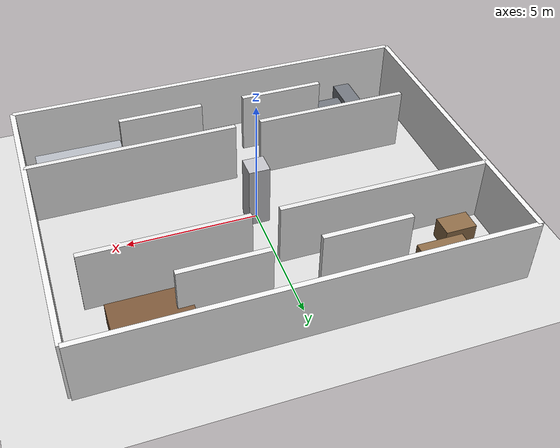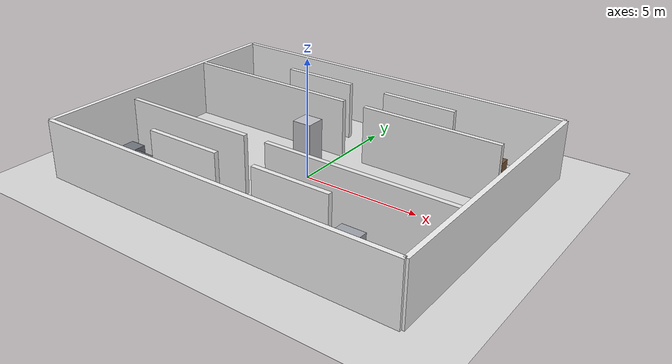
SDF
<?xml version="1.0"?>
<sdf version="1.9">
  <world name="husarion_office">
    <physics name="1ms" type="ignored">
      <max_step_size>0.001</max_step_size>
      <real_time_factor>1.0</real_time_factor>
    </physics>

    <plugin filename="ignition-gazebo-contact-system" name="gz::sim::systems::Contact"/>
    <plugin filename="ignition-gazebo-imu-system" name="gz::sim::systems::Imu"/>
    <plugin filename="ignition-gazebo-physics-system" name="gz::sim::systems::Physics"/>
    <plugin filename="ignition-gazebo-scene-broadcaster-system" name="gz::sim::systems::SceneBroadcaster"/>
    <plugin filename="ignition-gazebo-sensors-system" name="gz::sim::systems::Sensors"/>
    <plugin filename="ignition-gazebo-user-commands-system" name="gz::sim::systems::UserCommands"/>

    <scene>
      <ambient>0.8 0.8 0.8 1</ambient>
      <background>0.95 0.95 0.97 1</background>
      <grid>0</grid>
      <shadows>1</shadows>
    </scene>

    <light name="sun" type="directional">
      <cast_shadows>true</cast_shadows>
      <pose>0 0 15 0 0 0</pose>
      <diffuse>0.9 0.9 0.9 1</diffuse>
      <specular>0.2 0.2 0.2 1</specular>
      <attenuation>
        <range>100</range>
        <constant>0.9</constant>
        <linear>0.01</linear>
        <quadratic>0.001</quadratic>
      </attenuation>
      <direction>-0.4 0.2 -0.9</direction>
    </light>

    <model name="ground_plane">
      <static>true</static>
      <link name="link">
        <collision name="collision">
          <geometry>
            <plane>
              <normal>0 0 1</normal>
              <size>30 30</size>
            </plane>
          </geometry>
        </collision>
        <visual name="visual">
          <geometry>
            <plane>
              <normal>0 0 1</normal>
              <size>30 30</size>
            </plane>
          </geometry>
          <material>
            <ambient>0.85 0.85 0.85 1</ambient>
            <diffuse>0.85 0.85 0.85 1</diffuse>
          </material>
        </visual>
      </link>
    </model>

    <model name="office_shell">
      <static>true</static>
      <link name="walls">
        <collision name="outer_north"><pose>0 6 1.25 0 0 0</pose><geometry><box><size>16 0.2 2.5</size></box></geometry></collision>
        <collision name="outer_south"><pose>0 -6 1.25 0 0 0</pose><geometry><box><size>16 0.2 2.5</size></box></geometry></collision>
        <collision name="outer_west"><pose>-8 0 1.25 0 0 0</pose><geometry><box><size>0.2 12 2.5</size></box></geometry></collision>
        <collision name="outer_east"><pose>8 0 1.25 0 0 0</pose><geometry><box><size>0.2 12 2.5</size></box></geometry></collision>

        <collision name="corridor_top_left"><pose>-4 2.5 1.25 0 0 0</pose><geometry><box><size>8 0.2 2.5</size></box></geometry></collision>
        <collision name="corridor_top_right"><pose>4 2.5 1.25 0 0 0</pose><geometry><box><size>6 0.2 2.5</size></box></geometry></collision>
        <collision name="corridor_bottom_left"><pose>-4 -2.5 1.25 0 0 0</pose><geometry><box><size>6 0.2 2.5</size></box></geometry></collision>
        <collision name="corridor_bottom_right"><pose>4 -2.5 1.25 0 0 0</pose><geometry><box><size>8 0.2 2.5</size></box></geometry></collision>

        <collision name="left_divider_top"><pose>-2.5 4.25 1.25 0 0 1.5708</pose><geometry><box><size>0.2 3.3 2.5</size></box></geometry></collision>
        <collision name="left_divider_bottom"><pose>-2.5 -4.25 1.25 0 0 1.5708</pose><geometry><box><size>0.2 3.3 2.5</size></box></geometry></collision>
        <collision name="right_divider_top"><pose>2.5 4.25 1.25 0 0 1.5708</pose><geometry><box><size>0.2 3.3 2.5</size></box></geometry></collision>
        <collision name="right_divider_bottom"><pose>2.5 -4.25 1.25 0 0 1.5708</pose><geometry><box><size>0.2 3.3 2.5</size></box></geometry></collision>
        <collision name="center_pillar"><pose>0 0 1.25 0 0 0</pose><geometry><box><size>0.8 0.8 2.5</size></box></geometry></collision>

        <visual name="outer_north_v"><pose>0 6 1.25 0 0 0</pose><geometry><box><size>16 0.2 2.5</size></box></geometry><material><ambient>0.94 0.94 0.94 1</ambient><diffuse>0.94 0.94 0.94 1</diffuse></material></visual>
        <visual name="outer_south_v"><pose>0 -6 1.25 0 0 0</pose><geometry><box><size>16 0.2 2.5</size></box></geometry><material><ambient>0.94 0.94 0.94 1</ambient><diffuse>0.94 0.94 0.94 1</diffuse></material></visual>
        <visual name="outer_west_v"><pose>-8 0 1.25 0 0 0</pose><geometry><box><size>0.2 12 2.5</size></box></geometry><material><ambient>0.94 0.94 0.94 1</ambient><diffuse>0.94 0.94 0.94 1</diffuse></material></visual>
        <visual name="outer_east_v"><pose>8 0 1.25 0 0 0</pose><geometry><box><size>0.2 12 2.5</size></box></geometry><material><ambient>0.94 0.94 0.94 1</ambient><diffuse>0.94 0.94 0.94 1</diffuse></material></visual>
        <visual name="corridor_top_left_v"><pose>-4 2.5 1.25 0 0 0</pose><geometry><box><size>8 0.2 2.5</size></box></geometry><material><ambient>0.9 0.9 0.9 1</ambient><diffuse>0.9 0.9 0.9 1</diffuse></material></visual>
        <visual name="corridor_top_right_v"><pose>4 2.5 1.25 0 0 0</pose><geometry><box><size>6 0.2 2.5</size></box></geometry><material><ambient>0.9 0.9 0.9 1</ambient><diffuse>0.9 0.9 0.9 1</diffuse></material></visual>
        <visual name="corridor_bottom_left_v"><pose>-4 -2.5 1.25 0 0 0</pose><geometry><box><size>6 0.2 2.5</size></box></geometry><material><ambient>0.9 0.9 0.9 1</ambient><diffuse>0.9 0.9 0.9 1</diffuse></material></visual>
        <visual name="corridor_bottom_right_v"><pose>4 -2.5 1.25 0 0 0</pose><geometry><box><size>8 0.2 2.5</size></box></geometry><material><ambient>0.9 0.9 0.9 1</ambient><diffuse>0.9 0.9 0.9 1</diffuse></material></visual>
        <visual name="left_divider_top_v"><pose>-2.5 4.25 1.25 0 0 1.5708</pose><geometry><box><size>0.2 3.3 2.5</size></box></geometry><material><ambient>0.92 0.92 0.92 1</ambient><diffuse>0.92 0.92 0.92 1</diffuse></material></visual>
        <visual name="left_divider_bottom_v"><pose>-2.5 -4.25 1.25 0 0 1.5708</pose><geometry><box><size>0.2 3.3 2.5</size></box></geometry><material><ambient>0.92 0.92 0.92 1</ambient><diffuse>0.92 0.92 0.92 1</diffuse></material></visual>
        <visual name="right_divider_top_v"><pose>2.5 4.25 1.25 0 0 1.5708</pose><geometry><box><size>0.2 3.3 2.5</size></box></geometry><material><ambient>0.92 0.92 0.92 1</ambient><diffuse>0.92 0.92 0.92 1</diffuse></material></visual>
        <visual name="right_divider_bottom_v"><pose>2.5 -4.25 1.25 0 0 1.5708</pose><geometry><box><size>0.2 3.3 2.5</size></box></geometry><material><ambient>0.92 0.92 0.92 1</ambient><diffuse>0.92 0.92 0.92 1</diffuse></material></visual>
        <visual name="center_pillar_v"><pose>0 0 1.25 0 0 0</pose><geometry><box><size>0.8 0.8 2.5</size></box></geometry><material><ambient>0.75 0.75 0.77 1</ambient><diffuse>0.75 0.75 0.77 1</diffuse></material></visual>
      </link>
    </model>

    <model name="desk_cluster_nw">
      <static>true</static>
      <link name="desk">
        <collision name="desk_a"><pose>-5.5 4.5 0.4 0 0 0</pose><geometry><box><size>1.8 0.8 0.8</size></box></geometry></collision>
        <collision name="desk_b"><pose>-6.5 3.5 0.4 0 0 0</pose><geometry><box><size>1.2 0.8 0.8</size></box></geometry></collision>
        <visual name="desk_a_v"><pose>-5.5 4.5 0.4 0 0 0</pose><geometry><box><size>1.8 0.8 0.8</size></box></geometry><material><ambient>0.55 0.42 0.28 1</ambient><diffuse>0.55 0.42 0.28 1</diffuse></material></visual>
        <visual name="desk_b_v"><pose>-6.5 3.5 0.4 0 0 0</pose><geometry><box><size>1.2 0.8 0.8</size></box></geometry><material><ambient>0.55 0.42 0.28 1</ambient><diffuse>0.55 0.42 0.28 1</diffuse></material></visual>
      </link>
    </model>

    <model name="meeting_room_table">
      <static>true</static>
      <link name="table">
        <collision name="table_top"><pose>5.0 4.0 0.45 0 0 0</pose><geometry><box><size>2.8 1.2 0.9</size></box></geometry></collision>
        <visual name="table_top_v"><pose>5.0 4.0 0.45 0 0 0</pose><geometry><box><size>2.8 1.2 0.9</size></box></geometry><material><ambient>0.48 0.34 0.22 1</ambient><diffuse>0.48 0.34 0.22 1</diffuse></material></visual>
      </link>
    </model>

    <model name="kitchenette">
      <static>true</static>
      <link name="kitchen">
        <collision name="counter"><pose>5.8 -4.7 0.5 0 0 0</pose><geometry><box><size>3.4 0.7 1.0</size></box></geometry></collision>
        <collision name="island"><pose>4.5 -3.8 0.45 0 0 0</pose><geometry><box><size>1.0 0.9 0.9</size></box></geometry></collision>
        <visual name="counter_v"><pose>5.8 -4.7 0.5 0 0 0</pose><geometry><box><size>3.4 0.7 1.0</size></box></geometry><material><ambient>0.7 0.72 0.75 1</ambient><diffuse>0.7 0.72 0.75 1</diffuse></material></visual>
        <visual name="island_v"><pose>4.5 -3.8 0.45 0 0 0</pose><geometry><box><size>1.0 0.9 0.9</size></box></geometry><material><ambient>0.62 0.64 0.67 1</ambient><diffuse>0.62 0.64 0.67 1</diffuse></material></visual>
      </link>
    </model>

    <model name="storage_racks">
      <static>true</static>
      <link name="racks">
        <collision name="rack_1"><pose>-5.8 -4.6 0.6 0 0 0</pose><geometry><box><size>0.7 2.0 1.2</size></box></geometry></collision>
        <collision name="rack_2"><pose>-4.6 -4.4 0.6 0 0 1.5708</pose><geometry><box><size>0.7 1.4 1.2</size></box></geometry></collision>
        <visual name="rack_1_v"><pose>-5.8 -4.6 0.6 0 0 0</pose><geometry><box><size>0.7 2.0 1.2</size></box></geometry><material><ambient>0.44 0.46 0.49 1</ambient><diffuse>0.44 0.46 0.49 1</diffuse></material></visual>
        <visual name="rack_2_v"><pose>-4.6 -4.4 0.6 0 0 1.5708</pose><geometry><box><size>0.7 1.4 1.2</size></box></geometry><material><ambient>0.44 0.46 0.49 1</ambient><diffuse>0.44 0.46 0.49 1</diffuse></material></visual>
      </link>
    </model>
  </world>
</sdf>
